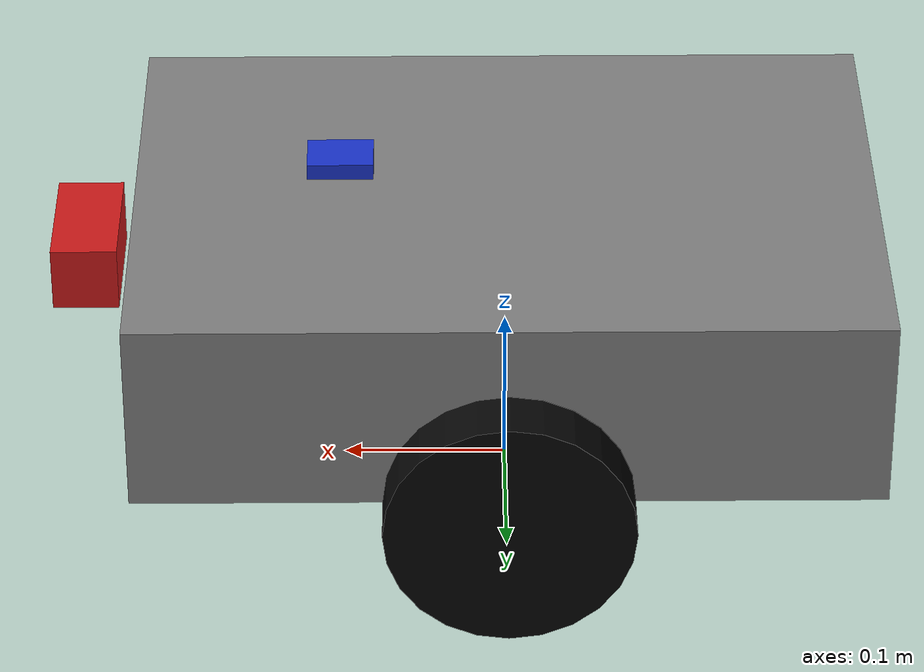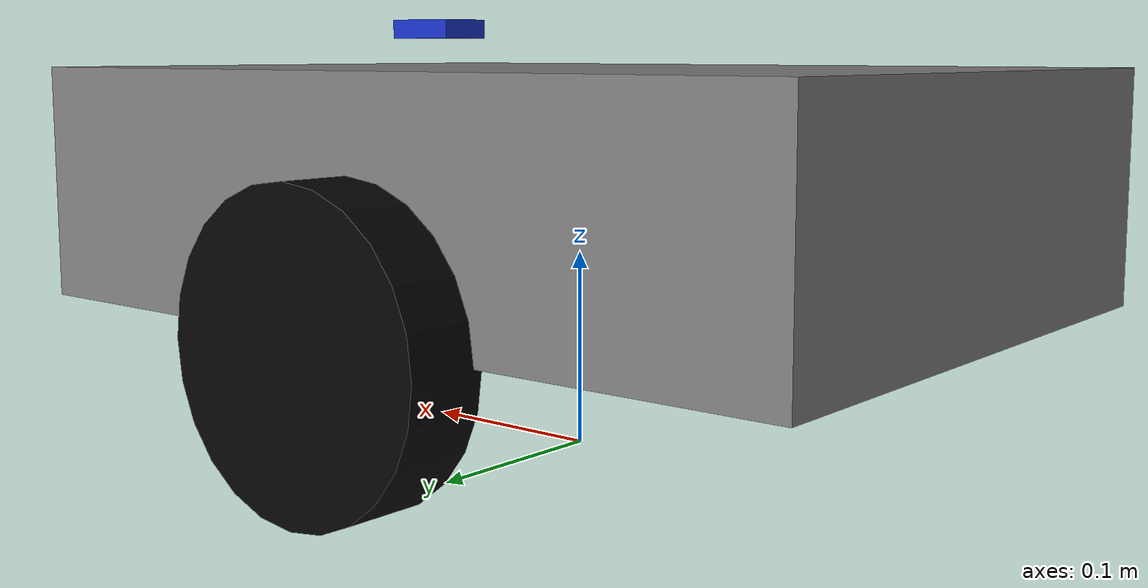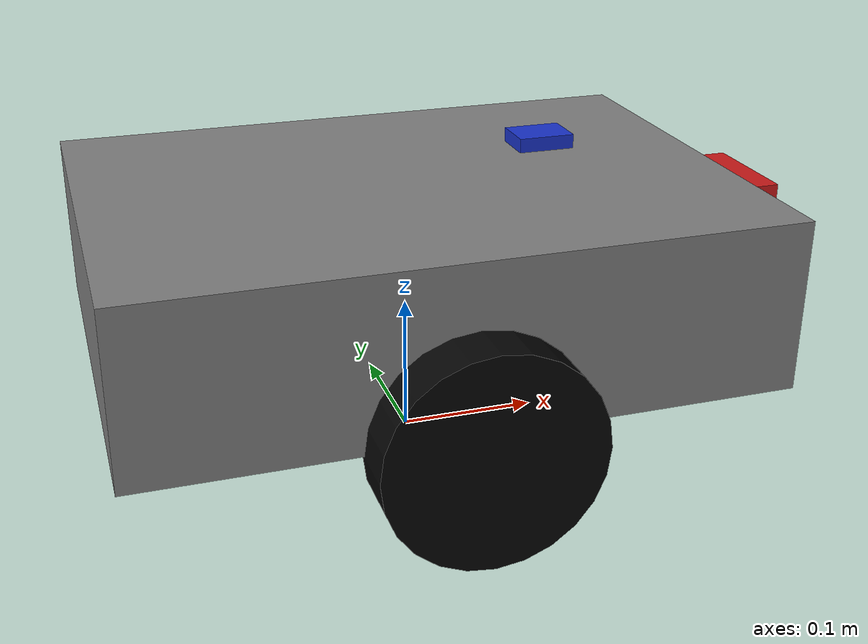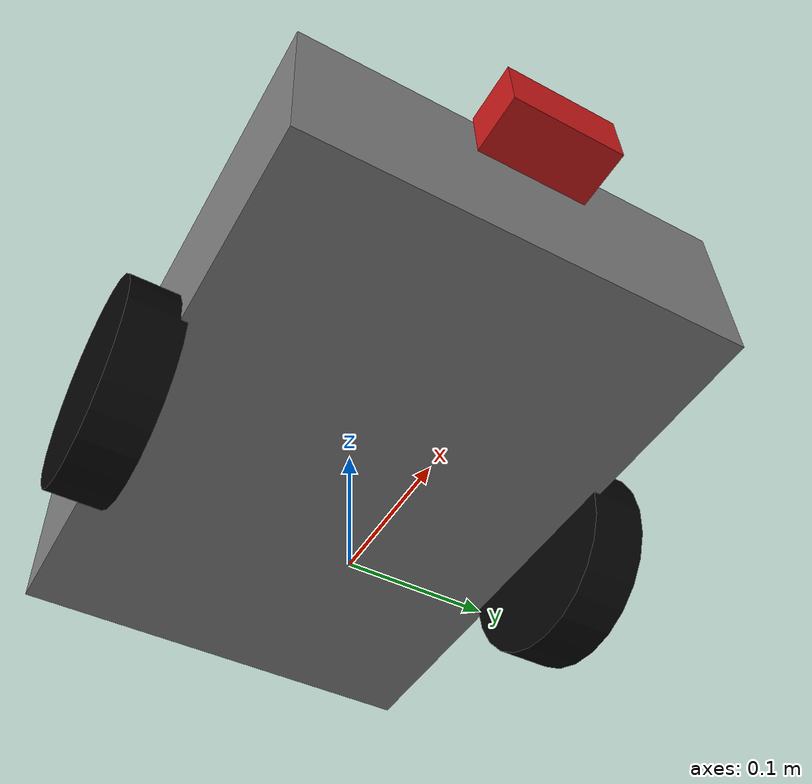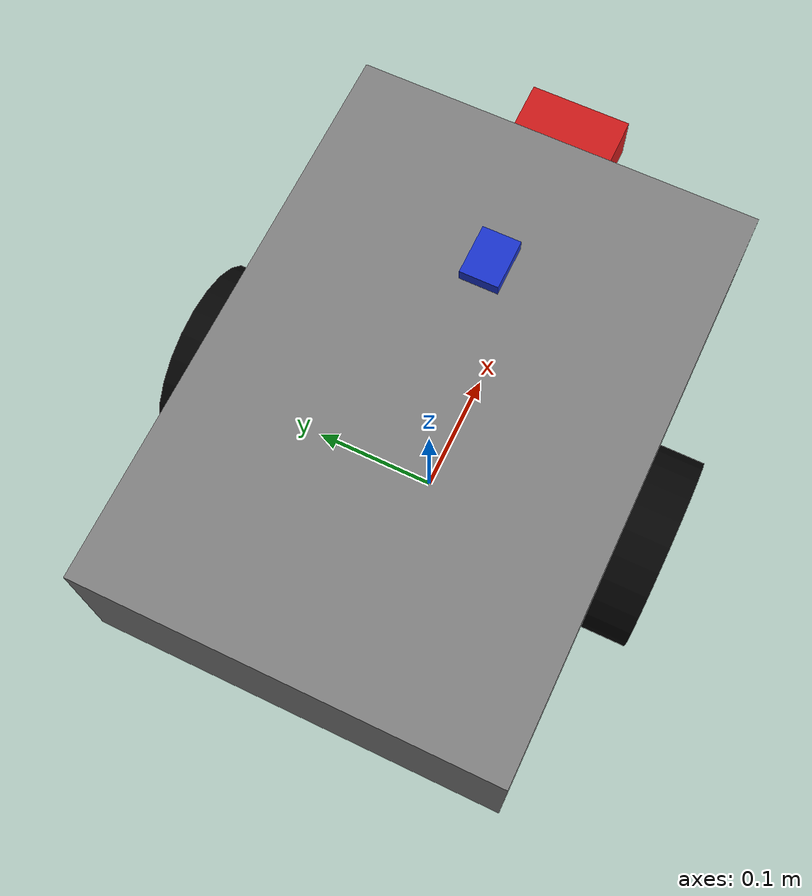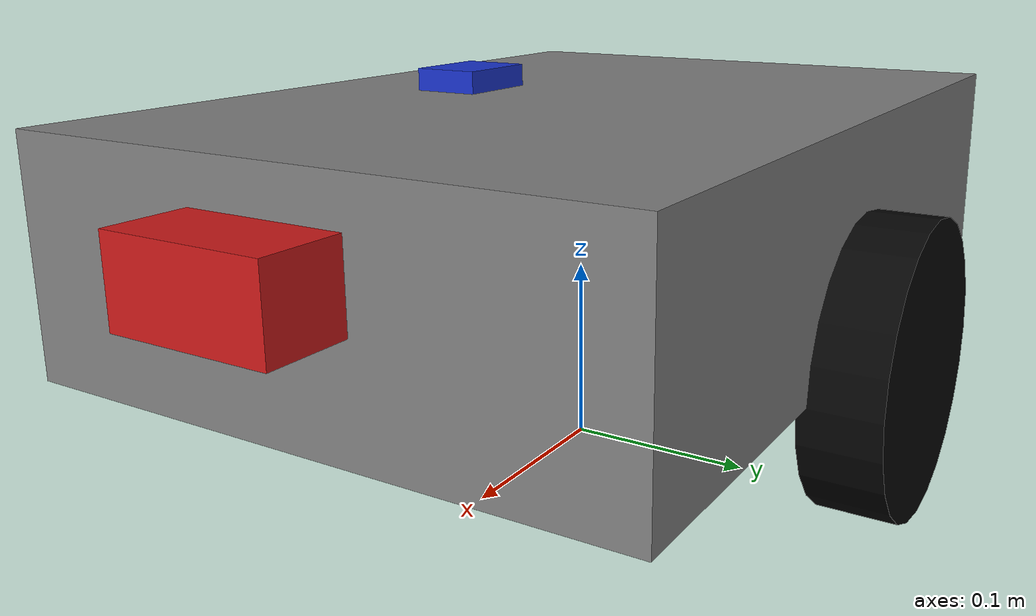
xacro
<?xml version="1.0"?>
<robot name="dw_robot" xmlns:xacro="http://www.ros.org/wiki/xacro">

  <!-- Robot parameters -->

  <xacro:property name="base_length" value="0.45"/>
  <xacro:property name="base_width" value="0.32"/>
  <xacro:property name="base_height" value="0.12"/>

  <xacro:property name="wheel_radius" value="0.075"/>
  <xacro:property name="wheel_width" value="0.04"/>
  <xacro:property name="wheel_separation" value="0.35"/>

  <xacro:property name="base_z" value="${wheel_radius + base_height / 2.0}"/>

  <!-- Materials -->

  <material name="gray">
    <color rgba="0.5 0.5 0.5 1.0"/>
  </material>

  <material name="black">
    <color rgba="0.02 0.02 0.02 1.0"/>
  </material>

  <material name="blue">
    <color rgba="0.1 0.2 0.8 1.0"/>
  </material>

  <material name="red">
    <color rgba="0.8 0.1 0.1 1.0"/>
  </material>

  <!-- base_footprint -->

  <link name="base_footprint"/>

  <!-- base_link -->

  <joint name="base_footprint_to_base_link" type="fixed">
    <parent link="base_footprint"/>
    <child link="base_link"/>
    <origin xyz="0 0 ${base_z}" rpy="0 0 0"/>
  </joint>

  <link name="base_link">
    <visual>
      <origin xyz="0 0 0" rpy="0 0 0"/>
      <geometry>
        <box size="${base_length} ${base_width} ${base_height}"/>
      </geometry>
      <material name="gray"/>
    </visual>

    <collision>
      <origin xyz="0 0 0" rpy="0 0 0"/>
      <geometry>
        <box size="${base_length} ${base_width} ${base_height}"/>
      </geometry>
    </collision>

    <inertial>
      <origin xyz="0 0 0" rpy="0 0 0"/>
      <mass value="5.0"/>
      <inertia
        ixx="0.05" ixy="0.0" ixz="0.0"
        iyy="0.10" iyz="0.0"
        izz="0.10"/>
    </inertial>
  </link>

  <!-- Left wheel -->

  <joint name="left_wheel_joint" type="continuous">
    <parent link="base_link"/>
    <child link="left_wheel_link"/>
    <origin xyz="0 ${wheel_separation / 2.0} ${-base_height / 2.0}" rpy="${-pi/2.0} 0 0"/>
    <axis xyz="0 0 1"/>
  </joint>

  <link name="left_wheel_link">
    <visual>
      <geometry>
        <cylinder radius="${wheel_radius}" length="${wheel_width}"/>
      </geometry>
      <material name="black"/>
    </visual>

    <collision>
      <geometry>
        <cylinder radius="${wheel_radius}" length="${wheel_width}"/>
      </geometry>
    </collision>

    <inertial>
      <mass value="0.5"/>
      <inertia
        ixx="0.001" ixy="0.0" ixz="0.0"
        iyy="0.001" iyz="0.0"
        izz="0.001"/>
    </inertial>
  </link>

  <!-- Right wheel -->

  <joint name="right_wheel_joint" type="continuous">
    <parent link="base_link"/>
    <child link="right_wheel_link"/>
    <origin xyz="0 ${-wheel_separation / 2.0} ${-base_height / 2.0}" rpy="${-pi/2.0} 0 0"/>
    <axis xyz="0 0 1"/>
  </joint>

  <link name="right_wheel_link">
    <visual>
      <geometry>
        <cylinder radius="${wheel_radius}" length="${wheel_width}"/>
      </geometry>
      <material name="black"/>
    </visual>

    <collision>
      <geometry>
        <cylinder radius="${wheel_radius}" length="${wheel_width}"/>
      </geometry>
    </collision>

    <inertial>
      <mass value="0.5"/>
      <inertia
        ixx="0.001" ixy="0.0" ixz="0.0"
        iyy="0.001" iyz="0.0"
        izz="0.001"/>
    </inertial>
  </link>

  <!-- IMU link -->

  <joint name="base_link_to_imu_link" type="fixed">
    <parent link="base_link"/>
    <child link="imu_link"/>
    <origin xyz="0.10 0 0.08" rpy="0 0 0"/>
  </joint>

  <link name="imu_link">
    <visual>
      <origin xyz="0 0 0" rpy="0 0 0"/>
      <geometry>
        <box size="0.04 0.03 0.01"/>
      </geometry>
      <material name="blue"/>
    </visual>

    <collision>
      <geometry>
        <box size="0.04 0.03 0.01"/>
      </geometry>
    </collision>

    <inertial>
      <mass value="0.05"/>
      <inertia
        ixx="0.00001" ixy="0.0" ixz="0.0"
        iyy="0.00001" iyz="0.0"
        izz="0.00001"/>
    </inertial>
  </link>

  <!-- Front direction marker -->

  <joint name="base_link_to_front_marker" type="fixed">
    <parent link="base_link"/>
    <child link="front_marker_link"/>
    <origin xyz="${base_length / 2.0 + 0.03} 0 0.02" rpy="0 0 0"/>
  </joint>

  <link name="front_marker_link">
    <visual>
      <geometry>
        <box size="0.04 0.08 0.04"/>
      </geometry>
      <material name="red"/>
    </visual>
  </link>

</robot>
